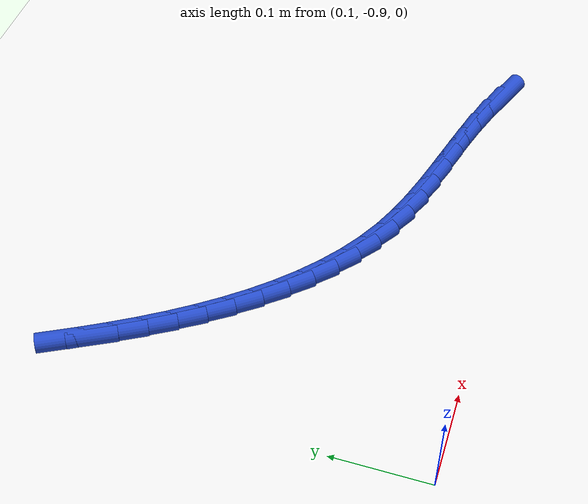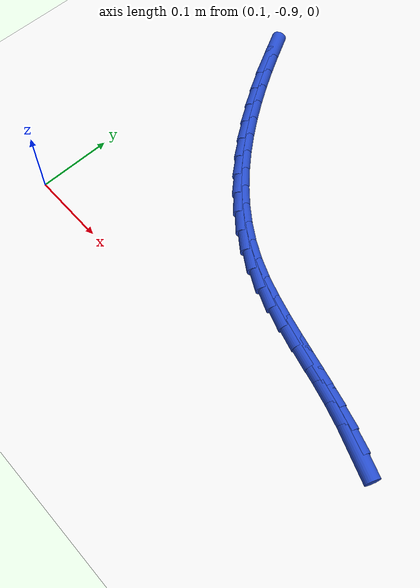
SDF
<sdf version="1.6">
 <world name="default">
  <model name="ground_plane">
   <static>1</static>
   <link name="link">
    <collision name="collision">
     <geometry><plane><normal>0 0 1</normal><size>100 100</size></plane></geometry>
     <surface><friction><ode><mu>100</mu><mu2>50</mu2></ode></friction></surface>
    </collision>
    <visual name="visual">
     <cast_shadows>0</cast_shadows>
     <geometry><plane><normal>0 0 1</normal><size>100 100</size></plane></geometry>
     <material>
      <script><uri>file://media/materials/scripts/gazebo.material</uri><name>Gazebo/WhiteGlow</name></script>
     </material>
    </visual>
   </link>
  </model>
  <model name="line">
   <link name="link_219">
    <pose>0.6078664377166182 -0.8570855495179563 0.01 0 1.57 -0.3723752293108316</pose>
    <collision name="collision">
     <geometry><cylinder><radius>0.01</radius><length>0.08</length></cylinder></geometry>
    </collision>
    <visual name="visual">
     <material>
      <script><name>Gazebo/Blue</name><uri>file://media/materials/scripts/gazebo.material</uri></script>
     </material>
     <geometry><cylinder><radius>0.01</radius><length>0.08</length></cylinder></geometry>
    </visual>
   </link>
   <link name="link_220">
    <pose>0.5818215831301105 -0.8469124751505174 0.01 0 1.57 -0.32382647231547307</pose>
    <collision name="collision">
     <geometry><cylinder><radius>0.01</radius><length>0.08</length></cylinder></geometry>
    </collision>
    <visual name="visual">
     <material>
      <script><name>Gazebo/Blue</name><uri>file://media/materials/scripts/gazebo.material</uri></script>
     </material>
     <geometry><cylinder><radius>0.01</radius><length>0.08</length></cylinder></geometry>
    </visual>
   </link>
   <link name="link_221">
    <pose>0.5552330364385353 -0.8379882552086251 0.01 0 1.57 -0.2839857862046978</pose>
    <collision name="collision">
     <geometry><cylinder><radius>0.01</radius><length>0.08</length></cylinder></geometry>
    </collision>
    <visual name="visual">
     <material>
      <script><name>Gazebo/Blue</name><uri>file://media/materials/scripts/gazebo.material</uri></script>
     </material>
     <geometry><cylinder><radius>0.01</radius><length>0.08</length></cylinder></geometry>
    </visual>
   </link>
   <link name="link_222">
    <pose>0.5282310473789383 -0.8301070588014988 0.01 0 1.57 -0.26123832843412975</pose>
    <collision name="collision">
     <geometry><cylinder><radius>0.01</radius><length>0.08</length></cylinder></geometry>
    </collision>
    <visual name="visual">
     <material>
      <script><name>Gazebo/Blue</name><uri>file://media/materials/scripts/gazebo.material</uri></script>
     </material>
     <geometry><cylinder><radius>0.01</radius><length>0.08</length></cylinder></geometry>
    </visual>
   </link>
   <link name="link_223">
    <pose>0.5010351313780362 -0.8228362866511777 0.01 0 1.57 -0.2558766931008807</pose>
    <collision name="collision">
     <geometry><cylinder><radius>0.01</radius><length>0.08</length></cylinder></geometry>
    </collision>
    <visual name="visual">
     <material>
      <script><name>Gazebo/Blue</name><uri>file://media/materials/scripts/gazebo.material</uri></script>
     </material>
     <geometry><cylinder><radius>0.01</radius><length>0.08</length></cylinder></geometry>
    </visual>
   </link>
   <link name="link_224">
    <pose>0.4738701986816813 -0.8157296346123661 0.01 0 1.57 -0.26798095456007137</pose>
    <collision name="collision">
     <geometry><cylinder><radius>0.01</radius><length>0.08</length></cylinder></geometry>
    </collision>
    <visual name="visual">
     <material>
      <script><name>Gazebo/Blue</name><uri>file://media/materials/scripts/gazebo.material</uri></script>
     </material>
     <geometry><cylinder><radius>0.01</radius><length>0.08</length></cylinder></geometry>
    </visual>
   </link>
   <link name="link_225">
    <pose>0.44696115953572574 -0.8083407985397673 0.01 0 1.57 -0.2979997082848241</pose>
    <collision name="collision">
     <geometry><cylinder><radius>0.01</radius><length>0.08</length></cylinder></geometry>
    </collision>
    <visual name="visual">
     <material>
      <script><name>Gazebo/Blue</name><uri>file://media/materials/scripts/gazebo.material</uri></script>
     </material>
     <geometry><cylinder><radius>0.01</radius><length>0.08</length></cylinder></geometry>
    </visual>
   </link>
   <link name="link_226">
    <pose>0.4205329241860217 -0.8002234742880847 0.01 0 1.57 -0.3466567654296858</pose>
    <collision name="collision">
     <geometry><cylinder><radius>0.01</radius><length>0.08</length></cylinder></geometry>
    </collision>
    <visual name="visual">
     <material>
      <script><name>Gazebo/Blue</name><uri>file://media/materials/scripts/gazebo.material</uri></script>
     </material>
     <geometry><cylinder><radius>0.01</radius><length>0.08</length></cylinder></geometry>
    </visual>
   </link>
   <link name="link_227">
    <pose>0.3948104028784216 -0.7909313577120225 0.01 0 1.57 -0.4146683273617015</pose>
    <collision name="collision">
     <geometry><cylinder><radius>0.01</radius><length>0.08</length></cylinder></geometry>
    </collision>
    <visual name="visual">
     <material>
      <script><name>Gazebo/Blue</name><uri>file://media/materials/scripts/gazebo.material</uri></script>
     </material>
     <geometry><cylinder><radius>0.01</radius><length>0.08</length></cylinder></geometry>
    </visual>
   </link>
   <link name="link_228">
    <pose>0.3700185057186927 -0.7800181449749182 0.01 0 1.57 -0.49799357500428193</pose>
    <collision name="collision">
     <geometry><cylinder><radius>0.01</radius><length>0.08</length></cylinder></geometry>
    </collision>
    <visual name="visual">
     <material>
      <script><name>Gazebo/Blue</name><uri>file://media/materials/scripts/gazebo.material</uri></script>
     </material>
     <geometry><cylinder><radius>0.01</radius><length>0.08</length></cylinder></geometry>
    </visual>
   </link>
   <link name="link_229">
    <pose>0.34633499139045015 -0.7671414157826331 0.01 0 1.57 -0.5797702133000514</pose>
    <collision name="collision">
     <geometry><cylinder><radius>0.01</radius><length>0.08</length></cylinder></geometry>
    </collision>
    <visual name="visual">
     <material>
      <script><name>Gazebo/Blue</name><uri>file://media/materials/scripts/gazebo.material</uri></script>
     </material>
     <geometry><cylinder><radius>0.01</radius><length>0.08</length></cylinder></geometry>
    </visual>
   </link>
   <link name="link_230">
    <pose>0.3237570856236179 -0.7523564982421704 0.01 0 1.57 -0.6554059729235882</pose>
    <collision name="collision">
     <geometry><cylinder><radius>0.01</radius><length>0.08</length></cylinder></geometry>
    </collision>
    <visual name="visual">
     <material>
      <script><name>Gazebo/Blue</name><uri>file://media/materials/scripts/gazebo.material</uri></script>
     </material>
     <geometry><cylinder><radius>0.01</radius><length>0.08</length></cylinder></geometry>
    </visual>
   </link>
   <link name="link_231">
    <pose>0.302238813423813 -0.7358138998650043 0.01 0 1.57 -0.7245529268169745</pose>
    <collision name="collision">
     <geometry><cylinder><radius>0.01</radius><length>0.08</length></cylinder></geometry>
    </collision>
    <visual name="visual">
     <material>
      <script><name>Gazebo/Blue</name><uri>file://media/materials/scripts/gazebo.material</uri></script>
     </material>
     <geometry><cylinder><radius>0.01</radius><length>0.08</length></cylinder></geometry>
    </visual>
   </link>
   <link name="link_232">
    <pose>0.28173419979665343 -0.7176641281626096 0.01 0 1.57 -0.7871738765902595</pose>
    <collision name="collision">
     <geometry><cylinder><radius>0.01</radius><length>0.08</length></cylinder></geometry>
    </collision>
    <visual name="visual">
     <material>
      <script><name>Gazebo/Blue</name><uri>file://media/materials/scripts/gazebo.material</uri></script>
     </material>
     <geometry><cylinder><radius>0.01</radius><length>0.08</length></cylinder></geometry>
    </visual>
   </link>
   <link name="link_233">
    <pose>0.26219726974775687 -0.6980576906464607 0.01 0 1.57 -0.8434532979464031</pose>
    <collision name="collision">
     <geometry><cylinder><radius>0.01</radius><length>0.08</length></cylinder></geometry>
    </collision>
    <visual name="visual">
     <material>
      <script><name>Gazebo/Blue</name><uri>file://media/materials/scripts/gazebo.material</uri></script>
     </material>
     <geometry><cylinder><radius>0.01</radius><length>0.08</length></cylinder></geometry>
    </visual>
   </link>
   <link name="link_234">
    <pose>0.24358204828274121 -0.6771450948280325 0.01 0 1.57 -0.8937142148290559</pose>
    <collision name="collision">
     <geometry><cylinder><radius>0.01</radius><length>0.08</length></cylinder></geometry>
    </collision>
    <visual name="visual">
     <material>
      <script><name>Gazebo/Blue</name><uri>file://media/materials/scripts/gazebo.material</uri></script>
     </material>
     <geometry><cylinder><radius>0.01</radius><length>0.08</length></cylinder></geometry>
    </visual>
   </link>
   <link name="link_235">
    <pose>0.22584256040722434 -0.6550768482187995 0.01 0 1.57 -0.9383507189618948</pose>
    <collision name="collision">
     <geometry><cylinder><radius>0.01</radius><length>0.08</length></cylinder></geometry>
    </collision>
    <visual name="visual">
     <material>
      <script><name>Gazebo/Blue</name><uri>file://media/materials/scripts/gazebo.material</uri></script>
     </material>
     <geometry><cylinder><radius>0.01</radius><length>0.08</length></cylinder></geometry>
    </visual>
   </link>
   <link name="link_236">
    <pose>0.20893283112682354 -0.6320034583302357 0.01 0 1.57 -0.9777783294416462</pose>
    <collision name="collision">
     <geometry><cylinder><radius>0.01</radius><length>0.08</length></cylinder></geometry>
    </collision>
    <visual name="visual">
     <material>
      <script><name>Gazebo/Blue</name><uri>file://media/materials/scripts/gazebo.material</uri></script>
     </material>
     <geometry><cylinder><radius>0.01</radius><length>0.08</length></cylinder></geometry>
    </visual>
   </link>
   <link name="link_237">
    <pose>0.19280688544715768 -0.6080754326738173 0.01 0 1.57 -1.0124001990426812</pose>
    <collision name="collision">
     <geometry><cylinder><radius>0.01</radius><length>0.08</length></cylinder></geometry>
    </collision>
    <visual name="visual">
     <material>
      <script><name>Gazebo/Blue</name><uri>file://media/materials/scripts/gazebo.material</uri></script>
     </material>
     <geometry><cylinder><radius>0.01</radius><length>0.08</length></cylinder></geometry>
    </visual>
   </link>
   <link name="link_238">
    <pose>0.17741874837384403 -0.5834432787610178 0.01 0 1.57 -1.042585570134396</pose>
    <collision name="collision">
     <geometry><cylinder><radius>0.01</radius><length>0.08</length></cylinder></geometry>
    </collision>
    <visual name="visual">
     <material>
      <script><name>Gazebo/Blue</name><uri>file://media/materials/scripts/gazebo.material</uri></script>
     </material>
     <geometry><cylinder><radius>0.01</radius><length>0.08</length></cylinder></geometry>
    </visual>
   </link>
   <link name="link_239">
    <pose>0.1627224449125005 -0.5582575041033122 0.01 0 1.57 -1.0686567731907974</pose>
    <collision name="collision">
     <geometry><cylinder><radius>0.01</radius><length>0.08</length></cylinder></geometry>
    </collision>
    <visual name="visual">
     <material>
      <script><name>Gazebo/Blue</name><uri>file://media/materials/scripts/gazebo.material</uri></script>
     </material>
     <geometry><cylinder><radius>0.01</radius><length>0.08</length></cylinder></geometry>
    </visual>
   </link>
   <link name="link_240">
    <pose>0.14867200006874493 -0.5326686162121752 0.01 0 1.57 -1.0908815960793607</pose>
    <collision name="collision">
     <geometry><cylinder><radius>0.01</radius><length>0.08</length></cylinder></geometry>
    </collision>
    <visual name="visual">
     <material>
      <script><name>Gazebo/Blue</name><uri>file://media/materials/scripts/gazebo.material</uri></script>
     </material>
     <geometry><cylinder><radius>0.01</radius><length>0.08</length></cylinder></geometry>
    </visual>
   </link>
  </model>
 </world>
</sdf>
